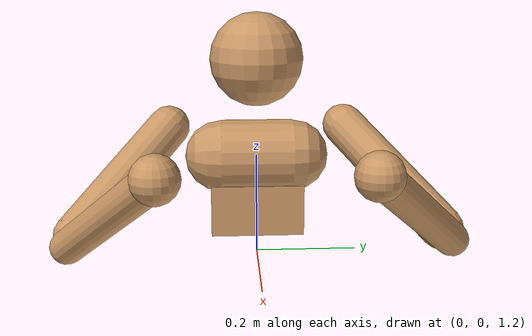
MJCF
<mujoco model="humanoid">
    <compiler angle="degree" inertiafromgeom="true"/>
    <default>
        <joint armature="1" damping="1" limited="true"/>
        <geom conaffinity="1" condim="1" contype="1" margin="0.001" material="geom" rgba="0.8 0.6 .4 1"/>
        <motor ctrllimited="true" ctrlrange="-.4 .4"/>
    </default>
    <option integrator="RK4" iterations="50" solver="PGS" timestep="0.003">
    </option>
    <size nkey="5" nuser_geom="1"/>

    <asset>
        <texture builtin="gradient" height="100" rgb1=".4 .5 .6" rgb2="0 0 0" type="skybox" width="100"/>
        <texture builtin="flat" height="1278" mark="cross" markrgb="1 1 1" name="texgeom" random="0.01" rgb1="0.8 0.6 0.4" rgb2="0.8 0.6 0.4" type="cube" width="127"/>
        <texture builtin="checker" height="100" name="texplane" rgb1="0 0 0" rgb2="0.8 0.8 0.8" type="2d" width="100"/>
        <material name="MatPlane" reflectance="0.5" shininess="1" specular="1" texrepeat="60 60" texture="texplane"/>
        <material name="geom" texture="texgeom" texuniform="true"/>
    </asset>
    <worldbody>
         <body name="torso" pos="0 0 1.4">
            <!--joint armature="0" damping="0" limited="false" name="root" pos="0 0 0" stiffness="0" type="free"/-->
            <geom fromto="0 -.07 0 0 .07 0" name="torso1" size="0.07" type="capsule"/>
            <geom name="head" pos="0 0 .19" size=".09" type="sphere" user="258"/>
            <geom name="uwaist" pos="0 0 -.10" size=".05 .09 .05"  type="box"/>
            <body name="right_upper_arm" pos="0 -0.17 0.06">
                <joint armature="0.0068" axis="2 1 1" name="right_shoulder1" pos="0 0 0" range="-100 60" stiffness="0" type="hinge"/>
                <joint armature="0.0051" axis="0 -1 1" name="right_shoulder2" pos="0 0 0" range="-100 60" stiffness="0" type="hinge"/>
                <geom fromto="0 0 0 .16 -.16 -.16" name="right_uarm1" size="0.04 0.16" type="capsule"/>
                <body name="right_lower_arm" pos=".18 -.18 -.18">
                    <joint armature="0.0028" axis="0 -1 1"  name="right_elbow" pos="0 0 0" range="-90 50" stiffness="0" type="hinge"/>
                    <geom fromto="0.01 0.01 0.01 .17 .17 .17" name="right_larm" size="0.031" type="capsule"/>
                    <body name="right_hand" pos=".18 .18 .18">
                        <joint armature="0" axis="0 -1 1" name="right_wrist" pos="0 0 0" range="-180 180" stiffness="0" type="hinge"/>
                        <geom name="right_hand" pos="0 0 0" size="0.04" type="sphere"/>
                    </body>
                </body>
            </body>
            <body name="left_upper_arm" pos="0 0.17 0.06">
                <joint armature="0.0068" axis="2 -1 1" name="left_shoulder1" pos="0 0 0" range="-60 100" stiffness="0" type="hinge"/>
                <joint armature="0.0051" axis="0 1 1" name="left_shoulder2" pos="0 0 0" range="-60 100" stiffness="0" type="hinge"/>
                <geom fromto="0 0 0 .16 .16 -.16" name="left_uarm1" size="0.04 0.16" type="capsule"/>
                <body name="left_lower_arm" pos=".18 .18 -.18">
                    <joint armature="0.0028" axis="0 -1 -1" name="left_elbow" pos="0 0 0" range="-90 50" stiffness="0" type="hinge"/>
                    <geom fromto="0.01 -0.01 0.01 .17 -.17 .17" name="left_larm" size="0.031" type="capsule"/>
                    <body name="left_hand" pos="0.18 -0.18 0.18">
                        <joint armature="0" axis="0 -1 -1" name="left_wrist" pos="0 0 0" range="-180 180" stiffness="0" type="hinge"/>
                        <geom name="left_hand" pos="0 0 0" size="0.04" type="sphere"/>
                    </body>
                </body>
            </body>
        </body>
    </worldbody>

    <actuator><!-- this section is not supported, same constants in code -->
        <motor gear="25" joint="right_shoulder1" name="right_shoulder1"/>
        <motor gear="25" joint="right_shoulder2" name="right_shoulder2"/>
        <motor gear="25" joint="right_elbow" name="right_elbow"/>
        <motor gear="25" joint="left_shoulder1" name="left_shoulder1"/>
        <motor gear="25" joint="left_shoulder2" name="left_shoulder2"/>
        <motor gear="25" joint="left_elbow" name="left_elbow"/>
    </actuator>
</mujoco>
